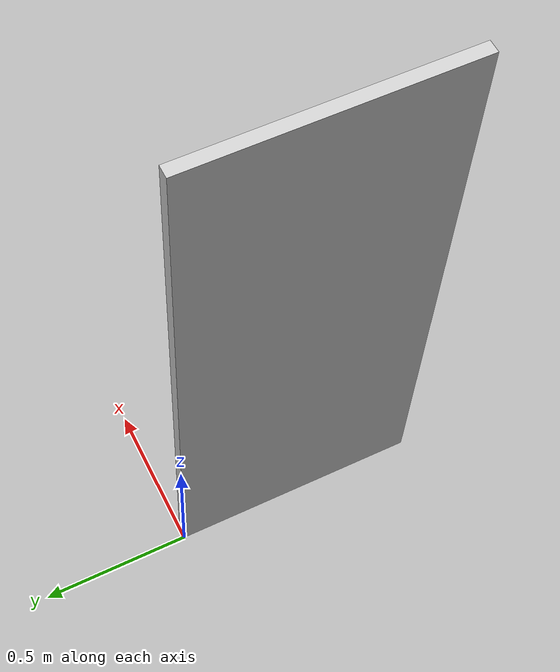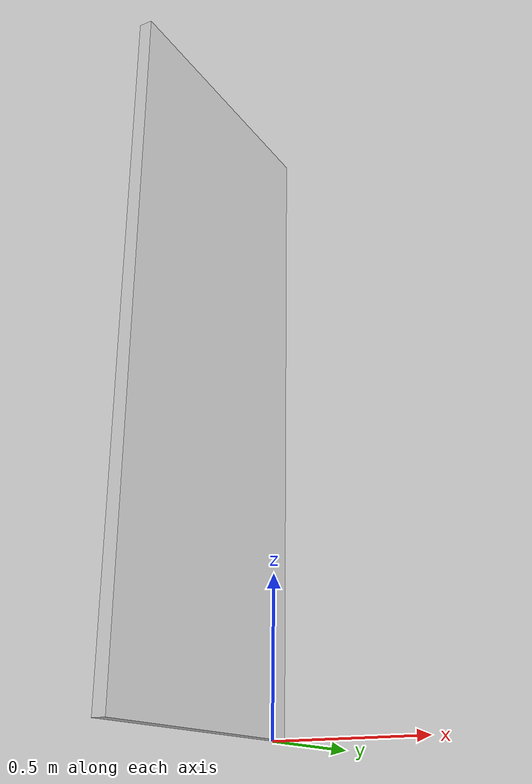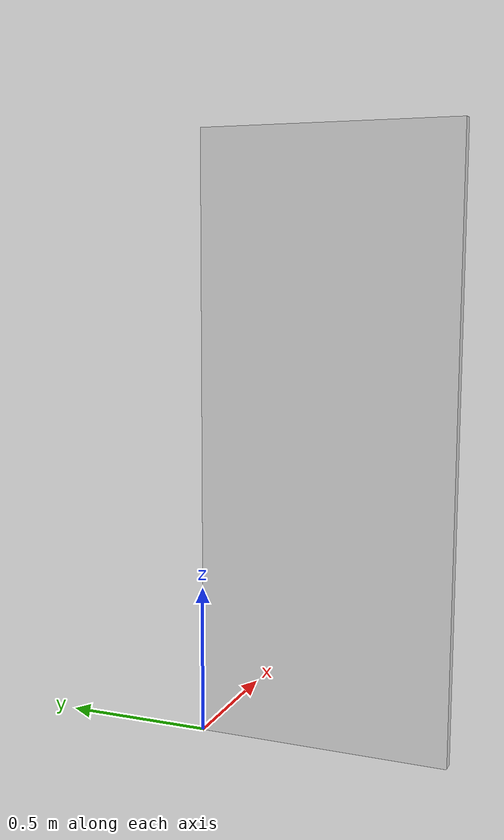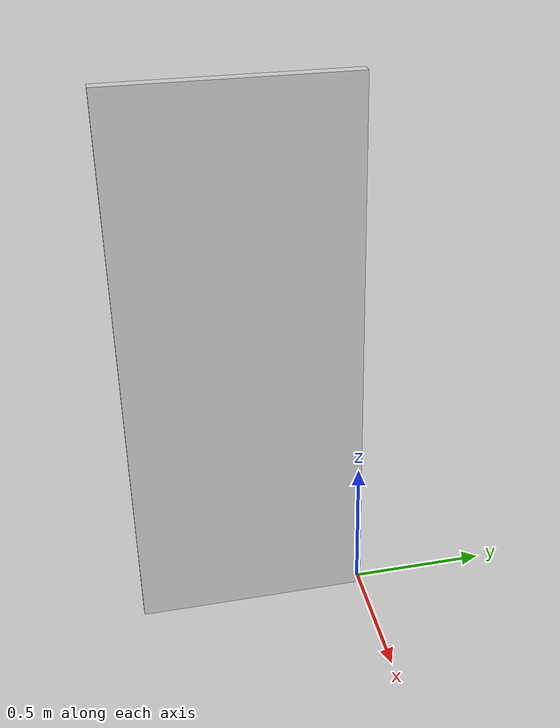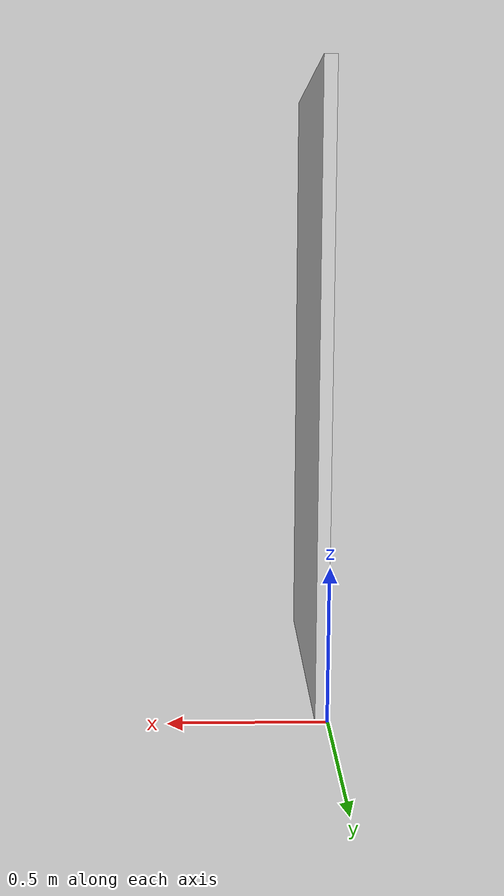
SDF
<?xml version="1.0"?>
<sdf version="1.6">
  <model name="rwc2016/door_right">
    <link name="1_link">
      <collision name="1_col">
        <geometry>
          <box>
            <size>0.04 0.84 2</size>
          </box>
        </geometry>
      </collision>
      <visual name="1_vis">
        <geometry>
          <box>
            <size>0.04 0.84 2</size>
          </box>
        </geometry>
        <material>
          <ambient>0.8 0.8 0.8 1</ambient>
        </material>
      </visual>
      <pose>0.02 -0.42 1 0 0 0</pose>
    </link>
    <static>true</static>
  </model>
</sdf>
